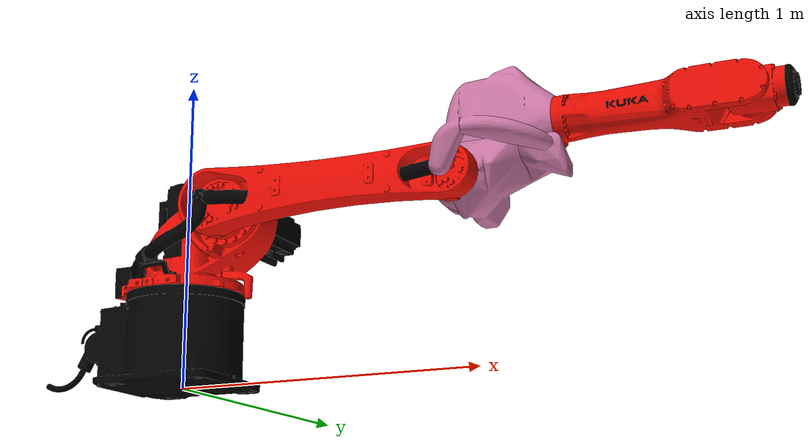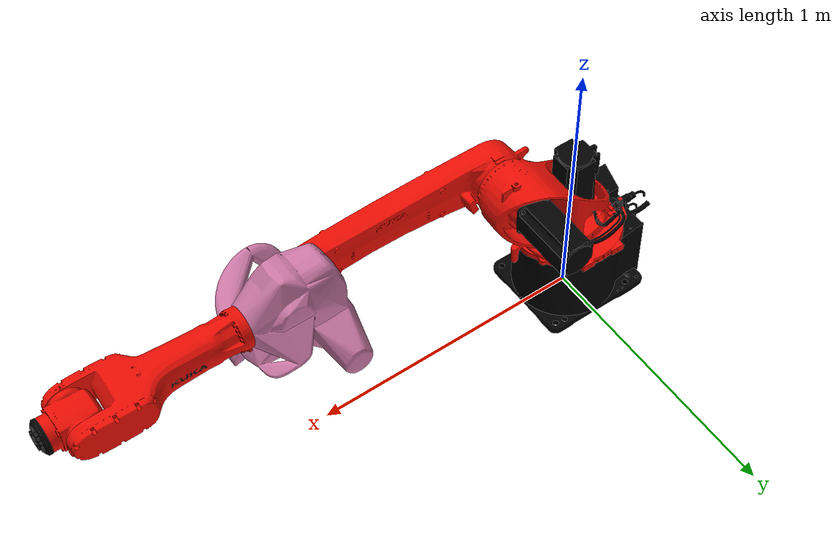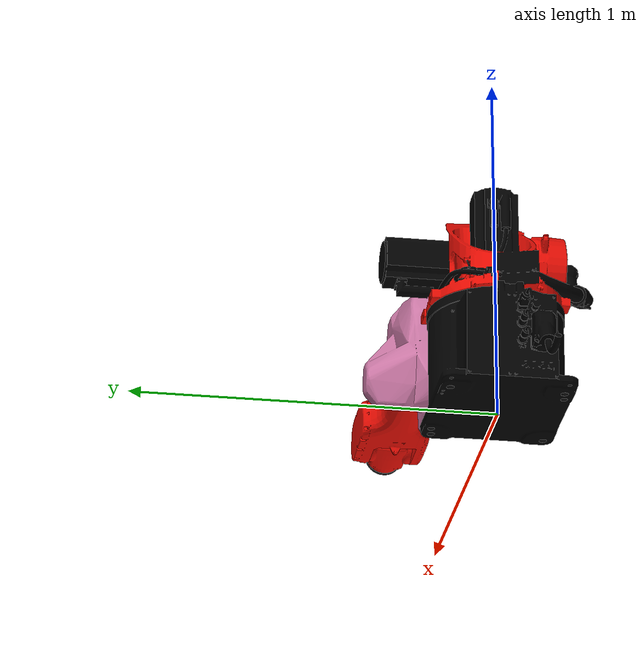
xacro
<?xml version="1.0" encoding="UTF-8"?>
<robot xmlns:xacro="http://www.ros.org/wiki/xacro" name="kr20_r1820_2_e">
  <!-- Import urdf files  -->
  <xacro:include filename="$(find kuka_cybertech_support)/urdf/kr20_r1820_2_e_macro.xacro"/>
  <xacro:include filename="$(find kuka_cybertech_support)/urdf/kr_cybertech_ros2_control_macro.xacro"/>
  <!-- Basic arguments  -->
  <xacro:arg name="prefix" default=""/>
  <xacro:arg name="x" default="0"/>
  <xacro:arg name="y" default="0"/>
  <xacro:arg name="z" default="0"/>
  <xacro:arg name="roll" default="0"/>
  <xacro:arg name="pitch" default="0"/>
  <xacro:arg name="yaw" default="0"/>
  <xacro:arg name="rsi_xml_config_file" default=""/>
  <!-- kroshu-specific arguments -->
  <xacro:arg name="driver_version" default="rsi_only"/>
  <xacro:arg name="mode" default="hardware"/>
  <xacro:arg name="gpio_config" default=""/>
  <xacro:arg name="roundtrip_time" default="0"/>
  <xacro:arg name="client_ip" default="0.0.0.0"/>
  <xacro:arg name="client_port" default="59152"/>
  <xacro:arg name="mxa_client_port" default="1337"/>
  <xacro:arg name="controller_ip" default="0.0.0.0"/>
  <xacro:arg name="verify_robot_model" default="true"/>
  <xacro:kuka_cybertech_ros2_control name="$(arg prefix)kr20_r1820_2_e" driver_version="$(arg driver_version)" client_ip="$(arg client_ip)" client_port="$(arg client_port)" mxa_client_port="$(arg mxa_client_port)" controller_ip="$(arg controller_ip)" prefix="$(arg prefix)" mode="$(arg mode)" gpio_config="$(arg gpio_config)" roundtrip_time="$(arg roundtrip_time)" verify_robot_model="$(arg verify_robot_model)" rsi_xml_config_file="$(arg rsi_xml_config_file)">
    <ext_axes_ros2_control_joints/>
  </xacro:kuka_cybertech_ros2_control>
  <!-- world link -->
  <link name="world"/>
  <!-- robot links, joints -->
  <xacro:kuka_kr20_r1820_2_e_robot prefix="$(arg prefix)" package_name="kuka_cybertech_support"/>
  <!-- default world - base_link joint -->
  <joint name="$(arg prefix)world-base_link" type="fixed">
    <parent link="world"/>
    <child link="$(arg prefix)base_link"/>
    <origin xyz="$(arg x) $(arg y) $(arg z)" rpy="$(arg roll) $(arg pitch) $(arg yaw)"/>
  </joint>
</robot>

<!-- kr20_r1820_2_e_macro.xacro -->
<robot xmlns:xacro="http://www.ros.org/wiki/xacro" name="kr20_r1820_2_e">
  <xacro:macro name="kuka_kr20_r1820_2_e_robot" params="prefix package_name">
    <link name="${prefix}base"/>
    <link name="${prefix}base_link">
      <collision>
        <geometry>
          <mesh filename="package://${package_name}/meshes/kr20_r1820_2_e/collision/base_link.stl"/>
        </geometry>
        <origin rpy="0.0 0.0 0.0" xyz="0.0 0.0 0.0"/>
      </collision>
      <inertial>
        <!-- Note that these values are only rough estimates -->
        <inertia ixx="1.1822" ixy="0.0" ixz="0.0" iyy="1.3458" iyz="0.0" izz="1.5590"/>
        <mass value="64.6"/>
        <origin rpy="0.0 0.0 0.0" xyz="0.0 0.0 0.15"/>
      </inertial>
      <visual>
        <geometry>
          <mesh filename="package://${package_name}/meshes/kr20_r1820_2_e/visual/base_link.dae"/>
        </geometry>
        <origin rpy="0.0 0.0 0.0" xyz="0.0 0.0 0.0"/>
      </visual>
    </link>
    <link name="${prefix}flange"/>
    <link name="${prefix}link_1">
      <collision>
        <geometry>
          <mesh filename="package://${package_name}/meshes/kr20_r1820_2_e/collision/link_1.stl"/>
        </geometry>
        <origin rpy="-3.1415853071795867 0.0 -0.0" xyz="0.0 -2.841591467929739e-06 0.3867999999895622"/>
      </collision>
      <inertial>
        <inertia ixx="1.8954" ixy="0.0" ixz="0.0" iyy="1.4965" iyz="0.0" izz="2.3211"/>
        <mass value="90.81"/>
        <origin rpy="2.1346 -1.0185 2.3833" xyz="0.091 -0.0055 -0.0657"/>
      </inertial>
      <visual>
        <geometry>
          <mesh filename="package://${package_name}/meshes/kr20_r1820_2_e/visual/link_1.dae"/>
        </geometry>
        <origin rpy="-3.1415853071795867 0.0 -0.0" xyz="0.0 -2.841591467929739e-06 0.3867999999895622"/>
      </visual>
    </link>
    <link name="${prefix}link_2">
      <collision>
        <geometry>
          <mesh filename="package://${package_name}/meshes/kr20_r1820_2_e/collision/link_2.stl"/>
        </geometry>
        <origin rpy="1.5708 4.70197740325743e-38 1.5707963267948966" xyz="-0.5334999584891833 -0.19999999999999998 -0.011299118063378454"/>
      </collision>
      <inertial>
        <inertia ixx="4.593" ixy="0.0" ixz="0.0" iyy="0.2843" iyz="0.0" izz="4.6497"/>
        <mass value="48.6"/>
        <origin rpy="2.2435 -1.5128 -0.6729" xyz="0.2929 0.0005 -0.1651"/>
      </inertial>
      <visual>
        <geometry>
          <mesh filename="package://${package_name}/meshes/kr20_r1820_2_e/visual/link_2.dae"/>
        </geometry>
        <origin rpy="1.5708 4.70197740325743e-38 1.5707963267948966" xyz="-0.5334999584891833 -0.19999999999999998 -0.011299118063378454"/>
      </visual>
    </link>
    <link name="${prefix}link_3">
      <collision>
        <geometry>
          <mesh filename="package://${package_name}/meshes/kr20_r1820_2_e/collision/link_3.stl"/>
        </geometry>
        <origin rpy="1.5708 -0.0 -0.0" xyz="-0.20000000000000007 1.3134999584891836 0.13100088193662154"/>
      </collision>
      <inertial>
        <inertia ixx="0.5186" ixy="0.0" ixz="0.0" iyy="0.3595" iyz="0.0" izz="0.6054"/>
        <mass value="26.88"/>
        <origin rpy="0.178 0.0393 0.4933" xyz="0.0731 -0.0966 0.1298"/>
      </inertial>
      <visual>
        <geometry>
          <mesh filename="package://${package_name}/meshes/kr20_r1820_2_e/visual/link_3.dae"/>
        </geometry>
        <origin rpy="1.5708 -0.0 -0.0" xyz="-0.20000000000000007 1.3134999584891836 0.13100088193662154"/>
      </visual>
    </link>
    <link name="${prefix}link_4">
      <collision>
        <geometry>
          <mesh filename="package://${package_name}/meshes/kr20_r1820_2_e/collision/link_4.stl"/>
        </geometry>
        <origin rpy="-2.3561908169838683 1.570791132121014 -2.356194490195718" xyz="-1.4834982309708153 2.6094649976650527e-06 0.47030544919003336"/>
      </collision>
      <inertial>
        <inertia ixx="0.0601" ixy="0.0" ixz="0.0" iyy="0.7274" iyz="0.0" izz="0.7491"/>
        <mass value="14.92"/>
        <origin rpy="1.5584 -1.5554 -1.5573" xyz="-0.0003 0.0143 -0.2515"/>
      </inertial>
      <visual>
        <geometry>
          <mesh filename="package://${package_name}/meshes/kr20_r1820_2_e/visual/link_4.dae"/>
        </geometry>
        <origin rpy="-2.3561908169838683 1.570791132121014 -2.356194490195718" xyz="-1.4834982309708153 2.6094649976650527e-06 0.47030544919003336"/>
      </visual>
    </link>
    <link name="${prefix}link_5">
      <collision>
        <geometry>
          <mesh filename="package://${package_name}/meshes/kr20_r1820_2_e/collision/link_5.stl"/>
        </geometry>
        <origin rpy="1.5708036732051034 -1.3492460511333464e-11 3.673218595765785e-06" xyz="-1.022805144336711 1.483498535827246 -0.08299569831480545"/>
      </collision>
      <inertial>
        <inertia ixx="0.0143" ixy="0.0" ixz="0.0" iyy="0.0098" iyz="0.0" izz="0.0166"/>
        <mass value="4.81"/>
        <origin rpy="1.5629 -1.3463 0.0069" xyz="0.024 0.0002 -0.0735"/>
      </inertial>
      <visual>
        <geometry>
          <mesh filename="package://${package_name}/meshes/kr20_r1820_2_e/visual/link_5.dae"/>
        </geometry>
        <origin rpy="1.5708036732051034 -1.3492460511333464e-11 3.673218595765785e-06" xyz="-1.022805144336711 1.483498535827246 -0.08299569831480545"/>
      </visual>
    </link>
    <link name="${prefix}link_6">
      <collision>
        <geometry>
          <mesh filename="package://${package_name}/meshes/kr20_r1820_2_e/collision/link_6.stl"/>
        </geometry>
        <origin rpy="-2.6779399020961754 1.5707881132943111 -2.6779472485198745" xyz="-1.4834944904975613 8.347024887031148e-06 1.1013105935004437"/>
      </collision>
      <inertial>
        <inertia ixx="0.0011" ixy="0.0" ixz="0.0" iyy="0.0011" iyz="0.0" izz="0.0019"/>
        <mass value="1.44"/>
        <origin rpy="0.0 0.0 0.0" xyz="0.0 0.0 -0.0302"/>
      </inertial>
      <visual>
        <geometry>
          <mesh filename="package://${package_name}/meshes/kr20_r1820_2_e/visual/link_6.dae"/>
        </geometry>
        <origin rpy="-2.6779399020961754 1.5707881132943111 -2.6779472485198745" xyz="-1.4834944904975613 8.347024887031148e-06 1.1013105935004437"/>
      </visual>
    </link>
    <link name="${prefix}tool0"/>
    <joint name="${prefix}base_link-base" type="fixed">
      <child link="${prefix}base"/>
      <origin rpy="0.0 0.0 0.0" xyz="0.0 0.0 0.0"/>
      <parent link="${prefix}base_link"/>
    </joint>
    <joint name="${prefix}joint_1" type="revolute">
      <axis xyz="0.0 0.0 1.0"/>
      <child link="${prefix}link_1"/>
      <limit effort="1663.2" lower="-3.2289" upper="3.2289" velocity="3.4034"/>
      <origin rpy="-3.1416 0.0 0.0" xyz="0.0 0.0 0.3868"/>
      <parent link="${prefix}base_link"/>
    </joint>
    <joint name="${prefix}joint_2" type="revolute">
      <axis xyz="0.0 0.0 1.0"/>
      <child link="${prefix}link_2"/>
      <limit effort="1356.252" lower="-3.2289" upper="1.1345" velocity="3.0543"/>
      <origin rpy="1.5708 0.0 0.0" xyz="0.2 -0.0113 -0.1467"/>
      <parent link="${prefix}link_1"/>
    </joint>
    <joint name="${prefix}joint_3" type="revolute">
      <axis xyz="0.0 0.0 1.0"/>
      <child link="${prefix}link_3"/>
      <limit effort="429.6209" lower="-2.4086" upper="3.0543" velocity="3.1416"/>
      <origin rpy="0.0 0.0 0.0" xyz="0.78 0.0 -0.1423"/>
      <parent link="${prefix}link_2"/>
    </joint>
    <joint name="${prefix}joint_4" type="revolute">
      <axis xyz="0.0 0.0 1.0"/>
      <child link="${prefix}link_4"/>
      <limit effort="193.729" lower="-6.1087" upper="6.1087" velocity="6.2832"/>
      <origin rpy="1.5708 0.0 -1.5708" xyz="0.2703 -0.17 0.131"/>
      <parent link="${prefix}link_3"/>
    </joint>
    <joint name="${prefix}joint_5" type="revolute">
      <axis xyz="0.0 0.0 1.0"/>
      <child link="${prefix}link_5"/>
      <limit effort="76.2757" lower="-2.0944" upper="2.0944" velocity="6.2832"/>
      <origin rpy="0.0 1.5708 1.5708" xyz="0.0 0.083 -0.5525"/>
      <parent link="${prefix}link_4"/>
    </joint>
    <joint name="${prefix}joint_6" type="revolute">
      <axis xyz="0.0 0.0 1.0"/>
      <child link="${prefix}link_6"/>
      <limit effort="44.4912" lower="-6.1087" upper="6.1087" velocity="9.5993"/>
      <origin rpy="1.5708 0.0 -1.5708" xyz="0.0785 0.0 -0.083"/>
      <parent link="${prefix}link_5"/>
    </joint>
    <joint name="${prefix}link_6-flange" type="fixed">
      <child link="${prefix}flange"/>
      <origin rpy="0.0 1.5708 0.0" xyz="0.0 0.0 -0.052"/>
      <parent link="${prefix}link_6"/>
    </joint>
    <joint name="${prefix}link_6-tool0" type="fixed">
      <child link="${prefix}tool0"/>
      <origin rpy="3.1416 -0.0 3.1416" xyz="0.0 0.0 -0.052"/>
      <parent link="${prefix}link_6"/>
    </joint>
  </xacro:macro>
</robot>
